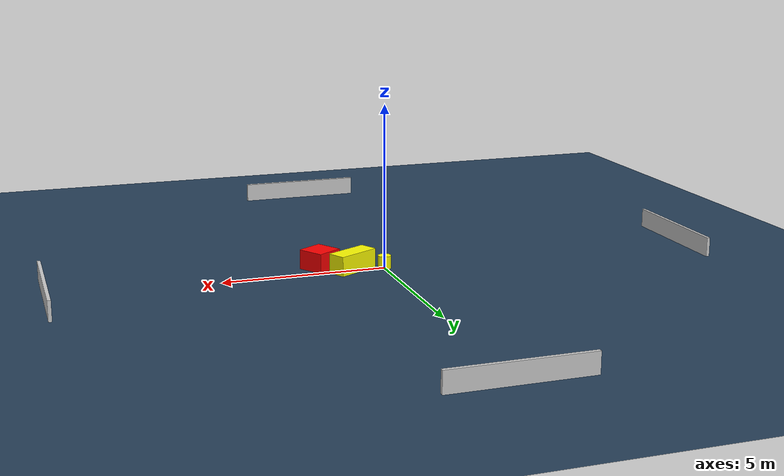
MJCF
<?xml version="1.0" ?>
<mujoco model="generated_environment">
  <option timestep="0.01" integrator="RK4" cone="elliptic"/>
  <default>
    <geom density="1"/>
  </default>
  <asset>
    <texture builtin="gradient" height="3072" name="skybox" rgb1="0.3 0.5 0.7" rgb2="0 0 0" type="skybox" width="512"/>
    <texture builtin="checker" height="300" name="groundplane" rgb1="0.2 0.3 0.4" rgb2="0.1 0.2 0.3" type="2d" width="300"/>
    <material name="groundplane" reflectance="0.2" texrepeat="5 5" texture="groundplane"/>
  </asset>
  <worldbody>
    <light dir="0 0 -1" directional="true" pos="0 0 1.5"/>
    <geom condim="3" friction="0.5 0.005 0.001" material="groundplane" name="floor" pos="0 0 0" size="0 0 0.05" type="plane"/>
    <body name="walls">
      <geom name="wall_1" condim="4" pos="-10.0 0.0 0.3" rgba="0.800000011920929 0.800000011920929 0.800000011920929 1.0" size="0.05 2.0 0.3" type="box"/>
      <geom name="wall_2" condim="4" pos="10.0 0.0 0.3" rgba="0.800000011920929 0.800000011920929 0.800000011920929 1.0" size="0.05 2.0 0.3" type="box"/>
      <geom name="wall_3" condim="4" pos="0.0 -10.0 0.3" rgba="0.800000011920929 0.800000011920929 0.800000011920929 1.0" size="2.0 0.05 0.3" type="box"/>
      <geom name="wall_4" condim="4" pos="0.0 10.0 0.3" rgba="0.800000011920929 0.800000011920929 0.800000011920929 1.0" size="2.0 0.05 0.3" type="box"/>
    </body>
    <body name="robot">
      <joint name="joint_x" type="slide" pos="0 0 0" axis="1 0 0"/>
      <joint name="joint_y" type="slide" pos="0 0 0" axis="0 1 0"/>
      <geom name="robot" type="cylinder" pos="0.0 0.0 0.2" size="0.2 0.2 0.0" mass="5.0" friction="1.0 0.005 0.0001" condim="4" rgba="1.0 1.0 0.0 1.0"/>
    </body>
    <body name="obstacle_1_movable">
      <geom name="obstacle_1_movable" condim="4" pos="0.9844558114116636 -0.08039674025554201 0.3" euler="0 0 118.15457546214988" friction="0.0 0.005 0.001" rgba="1.0 1.0 0.0 1.0" size="0.28759565973012624 0.6945387618272452 0.3" type="box" mass="0.1"/>
      <joint type="free"/>
    </body>
    <body name="obstacle_2_static">
      <geom name="obstacle_2_static" condim="4" pos="1.8665659174963656 -0.5915767603787877 0.3" euler="0 0 301.920137534186" friction="0.0 0.005 0.001" rgba="1.0 0.0 0.0 1.0" size="0.42614701553692 0.42324167422608255 0.3" type="box"/>
    </body>
  </worldbody>
  <actuator>
    <motor name="actuator_x" joint="joint_x" gear="1" ctrlrange="-1 1"/>
    <motor name="actuator_y" joint="joint_y" gear="1" ctrlrange="-1 1"/>
  </actuator>
</mujoco>
